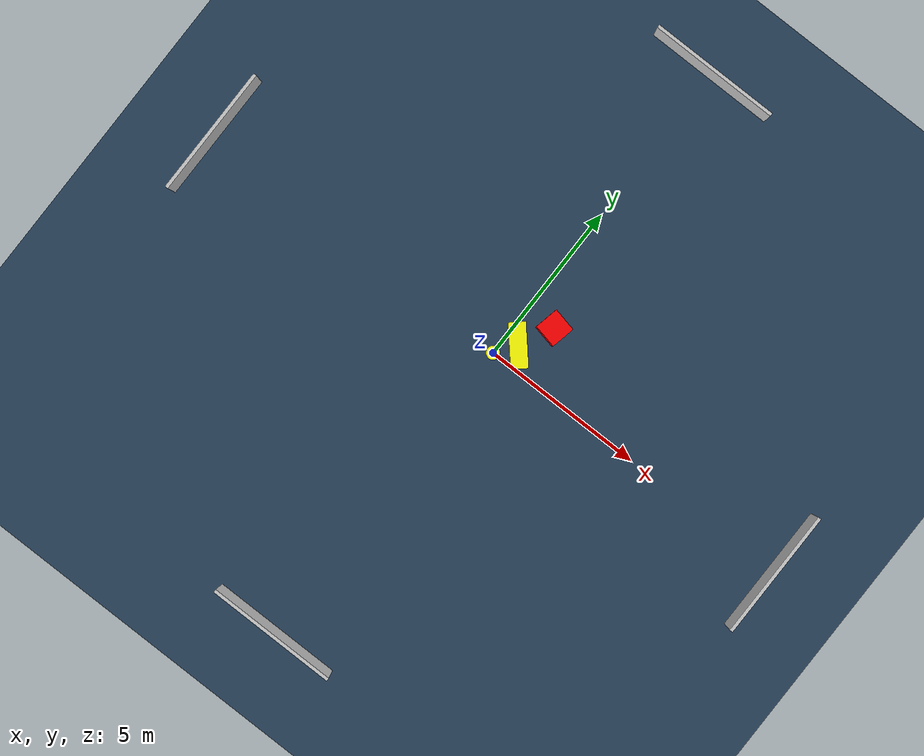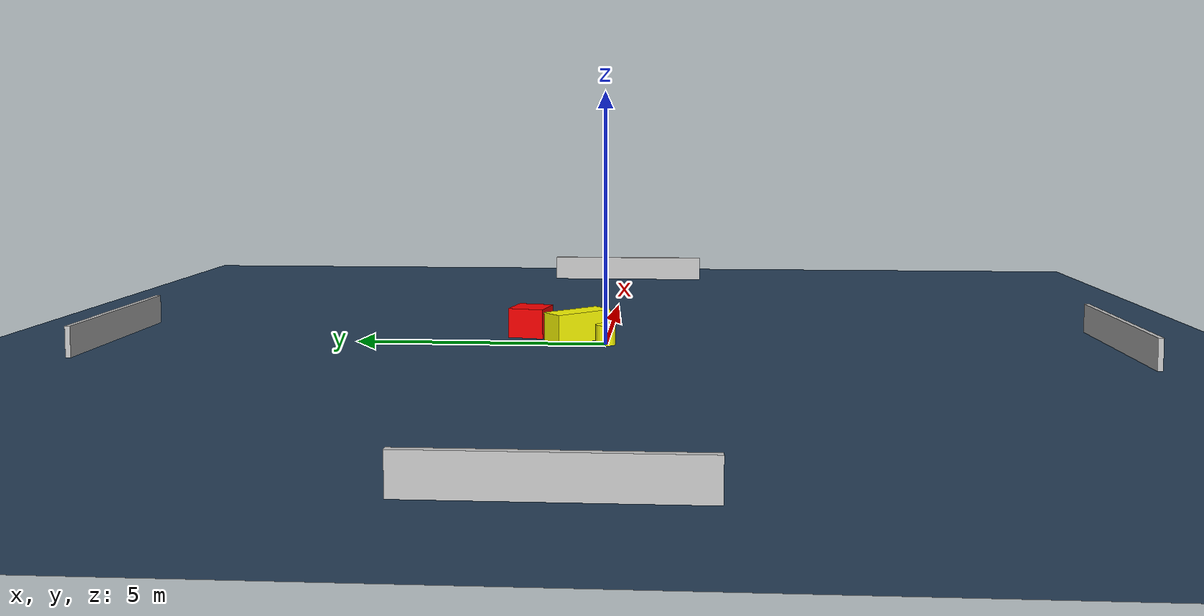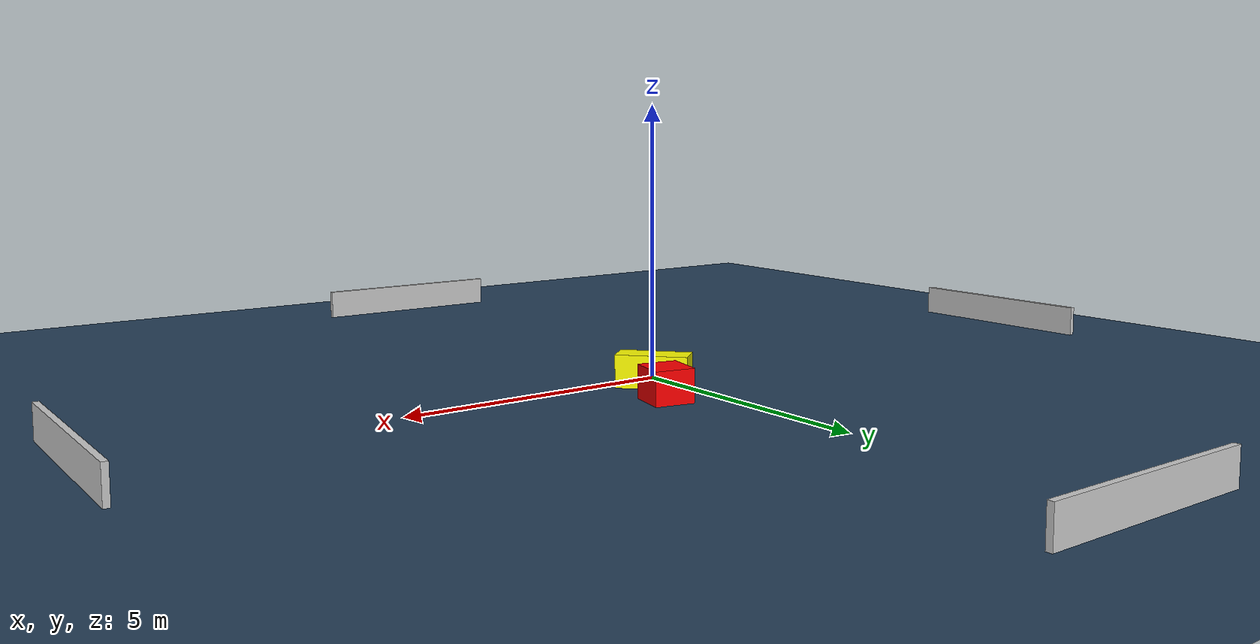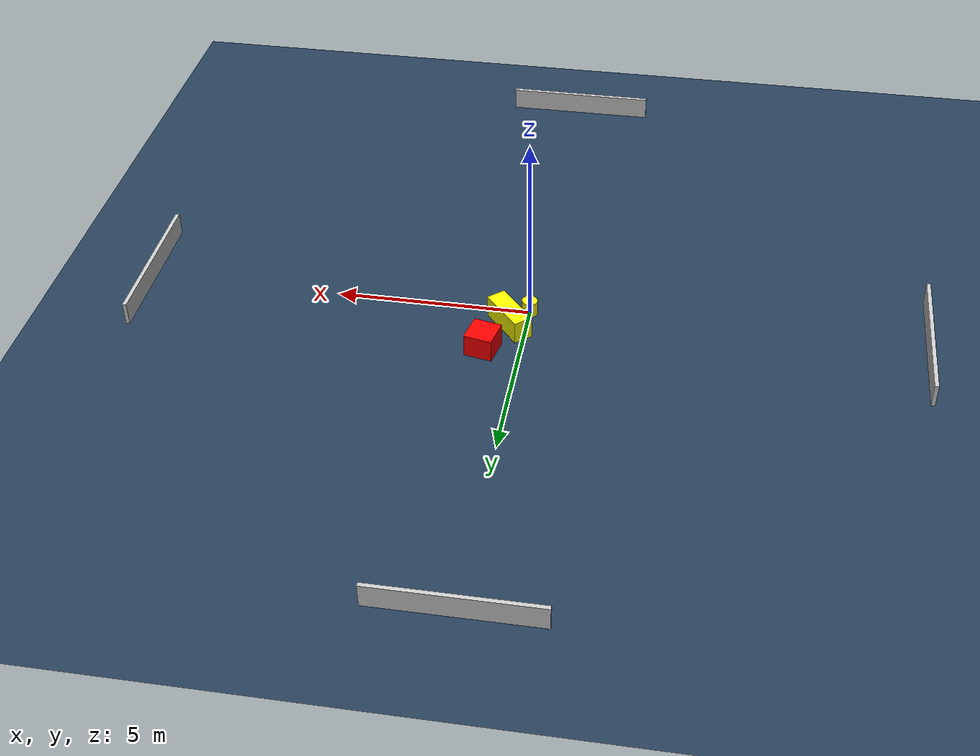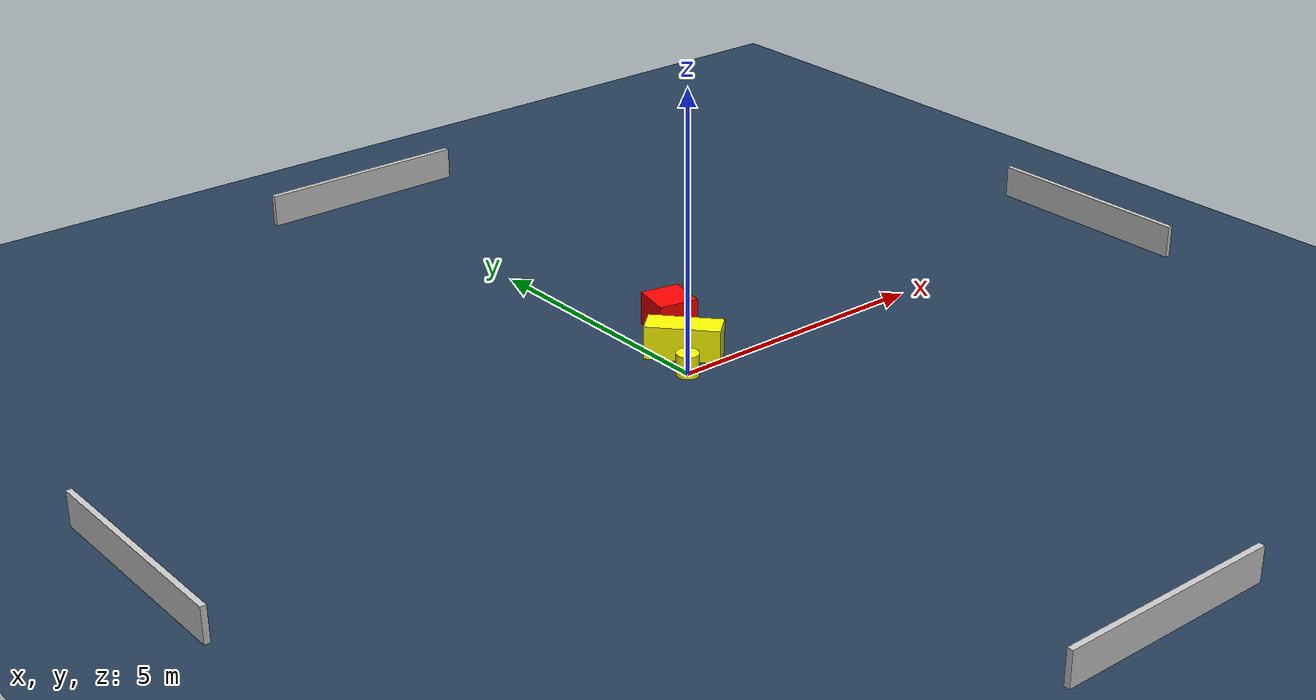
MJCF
<?xml version="1.0" ?>
<mujoco model="generated_environment">
  <option timestep="0.01" integrator="RK4" cone="elliptic"/>
  <default>
    <geom density="1"/>
  </default>
  <asset>
    <texture builtin="gradient" height="3072" name="skybox" rgb1="0.3 0.5 0.7" rgb2="0 0 0" type="skybox" width="512"/>
    <texture builtin="checker" height="300" name="groundplane" rgb1="0.2 0.3 0.4" rgb2="0.1 0.2 0.3" type="2d" width="300"/>
    <material name="groundplane" reflectance="0.2" texrepeat="5 5" texture="groundplane"/>
  </asset>
  <worldbody>
    <light dir="0 0 -1" directional="true" pos="0 0 1.5"/>
    <geom condim="3" friction="0.5 0.005 0.001" material="groundplane" name="floor" pos="0 0 0" size="0 0 0.05" type="plane"/>
    <body name="walls">
      <geom name="wall_1" condim="4" pos="-10.0 0.0 0.3" rgba="0.800000011920929 0.800000011920929 0.800000011920929 1.0" size="0.05 2.0 0.3" type="box"/>
      <geom name="wall_2" condim="4" pos="10.0 0.0 0.3" rgba="0.800000011920929 0.800000011920929 0.800000011920929 1.0" size="0.05 2.0 0.3" type="box"/>
      <geom name="wall_3" condim="4" pos="0.0 -10.0 0.3" rgba="0.800000011920929 0.800000011920929 0.800000011920929 1.0" size="2.0 0.05 0.3" type="box"/>
      <geom name="wall_4" condim="4" pos="0.0 10.0 0.3" rgba="0.800000011920929 0.800000011920929 0.800000011920929 1.0" size="2.0 0.05 0.3" type="box"/>
    </body>
    <body name="robot">
      <joint name="joint_x" type="slide" pos="0 0 0" axis="1 0 0"/>
      <joint name="joint_y" type="slide" pos="0 0 0" axis="0 1 0"/>
      <geom name="robot" type="cylinder" pos="0.0 0.0 0.2" size="0.2 0.2 0.0" mass="5.0" friction="1.0 0.005 0.0001" condim="4" rgba="1.0 1.0 0.0 1.0"/>
    </body>
    <body name="obstacle_1_movable">
      <geom name="obstacle_1_movable" condim="4" pos="0.4237774624527311 0.5972236554957413 0.3" euler="0 0 221.42398191075924" friction="0.0 0.005 0.001" rgba="1.0 1.0 0.0 1.0" size="0.2520164492336081 0.6529037841191396 0.3" type="box" mass="0.1"/>
      <joint type="free"/>
    </body>
    <body name="obstacle_2_static">
      <geom name="obstacle_2_static" condim="4" pos="0.9242607357203179 1.6051415268944091 0.3" euler="0 0 348.30658610939724" friction="0.0 0.005 0.001" rgba="1.0 0.0 0.0 1.0" size="0.3615511948143896 0.3654658827319097 0.3" type="box"/>
    </body>
  </worldbody>
  <actuator>
    <motor name="actuator_x" joint="joint_x" gear="1" ctrlrange="-1 1"/>
    <motor name="actuator_y" joint="joint_y" gear="1" ctrlrange="-1 1"/>
  </actuator>
</mujoco>
